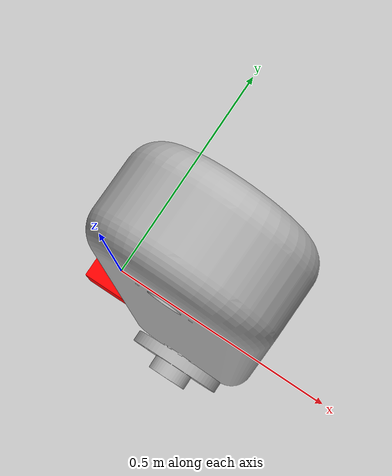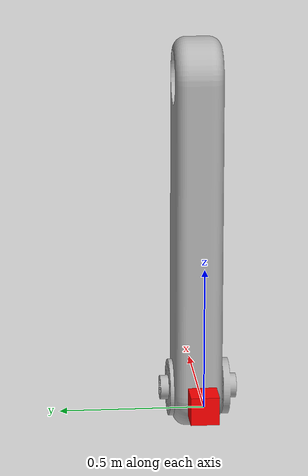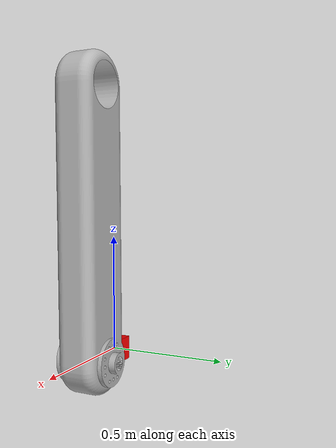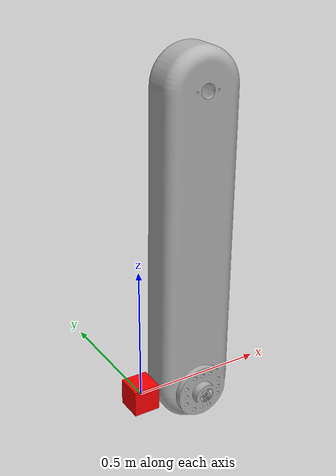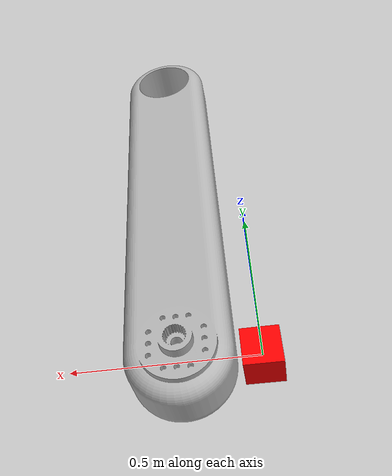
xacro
<?xml version="1.0"?>
<robot xmlns:xacro="http://www.ros.org/wiki/xacro" name="test">
    <material name="red">
        <color rgba="1 0 0 1"/>
    </material>

    <material name="grey">
        <color rgba="0.7 0.7 0.7 1.0"/>
    </material>

    <link name="world"/>

    <link name="test_box">
        <visual>
            <origin rpy="0 0 0" xyz="0 0 0"/>
            <geometry>
                <box size="0.1 0.1 0.1"/>
            </geometry>
            <material name="red"/>
        </visual>
    </link>

    <joint name="world_to_box" type="fixed">
        <parent link="world"/>
        <child link="test_box"/>
        <origin rpy="0 0 0" xyz="0 0 0"/>
    </joint>

    <link name="test_mesh">
        <visual>
            <origin rpy="0 0 0" xyz="0 0 0"/>
            <geometry>
                <mesh filename="package://arduinobot_description/meshes/arm_1.dae" scale="5 5 5"/>
            </geometry>
            <material name="grey"/>
        </visual>
    </link>

    <joint name="world_to_mesh" type="fixed">
        <parent link="world"/>
        <child link="test_mesh"/>
        <origin rpy="0 0 0" xyz="0.2 0 0"/>
    </joint>
</robot>
